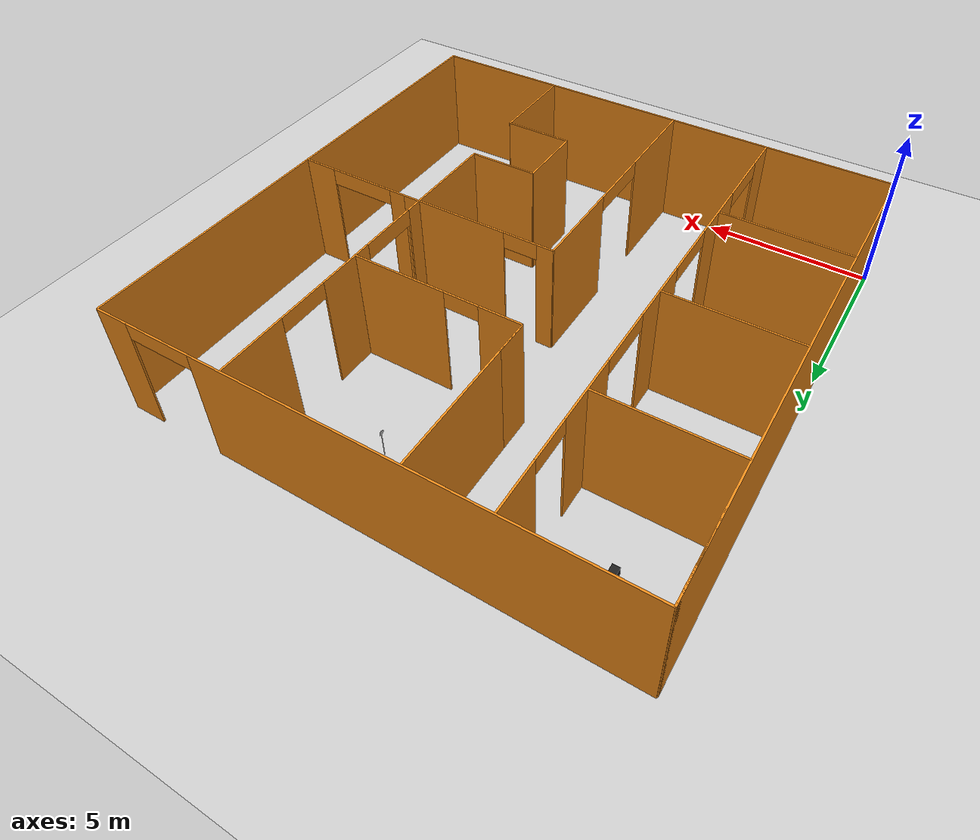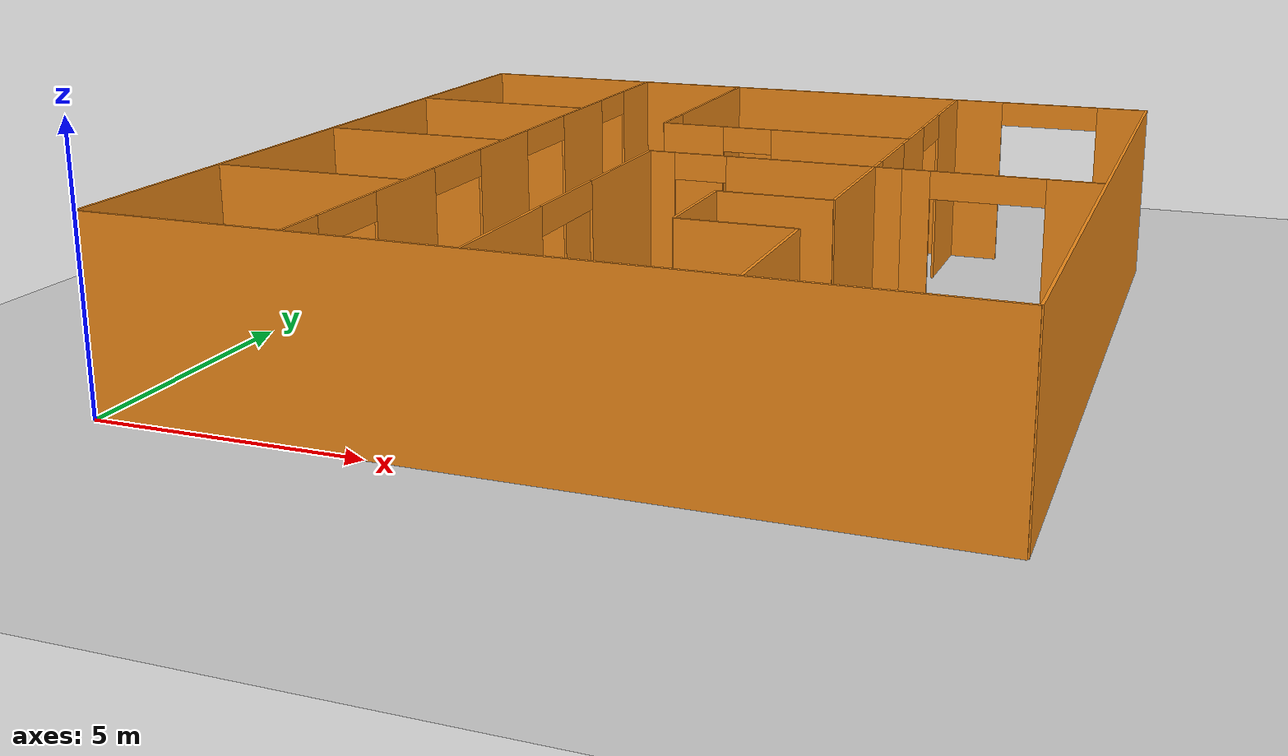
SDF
<sdf version="1.6">
  <world name="default">
    <model name="box_47">
  <pose frame="">11.0 8.875 3.25 0 0 -1.5707963267948966</pose>
  <link name="link">
    <inertial>
      <mass>1</mass>
      <inertia>
        <ixx>0</ixx>
        <ixy>0</ixy>
        <ixz>0</ixz>
        <iyy>0</iyy>
        <iyz>0</iyz>
        <izz>0</izz>
      </inertia>
    </inertial>
    <collision name="collision">
      <geometry>
        <box>
          <size>1.75 0.05 0.5</size>
        </box>
      </geometry>
      <max_contacts>10</max_contacts>
      <surface>
        <contact>
          <ode/>
        </contact>
        <bounce/>
        <friction>
          <torsional>
            <ode/>
          </torsional>
          <ode/>
        </friction>
      </surface>
    </collision>
    <visual name="visual">
      <geometry>
        <box>
          <size>1.75 0.05 0.5</size>
        </box>
      </geometry>
      <material>
        <script>
          <name>Gazebo/Orange</name>
          <uri>file://media/materials/scripts/gazebo.material</uri>
        </script>
      </material>
    </visual>
    <self_collide>0</self_collide>
    <enable_wind>0</enable_wind>
    <kinematic>0</kinematic>
  </link>
	<static>1</static>
</model><model name="box_46">
  <pose frame="">11.0 12.25 3.25 0 0 1.5707963267948966</pose>
  <link name="link">
    <inertial>
      <mass>1</mass>
      <inertia>
        <ixx>0</ixx>
        <ixy>0</ixy>
        <ixz>0</ixz>
        <iyy>0</iyy>
        <iyz>0</iyz>
        <izz>0</izz>
      </inertia>
    </inertial>
    <collision name="collision">
      <geometry>
        <box>
          <size>1.5 0.05 0.5</size>
        </box>
      </geometry>
      <max_contacts>10</max_contacts>
      <surface>
        <contact>
          <ode/>
        </contact>
        <bounce/>
        <friction>
          <torsional>
            <ode/>
          </torsional>
          <ode/>
        </friction>
      </surface>
    </collision>
    <visual name="visual">
      <geometry>
        <box>
          <size>1.5 0.05 0.5</size>
        </box>
      </geometry>
      <material>
        <script>
          <name>Gazebo/Orange</name>
          <uri>file://media/materials/scripts/gazebo.material</uri>
        </script>
      </material>
    </visual>
    <self_collide>0</self_collide>
    <enable_wind>0</enable_wind>
    <kinematic>0</kinematic>
  </link>
	<static>1</static>
</model><model name="box_45">
  <pose frame="">7.75 10.25 3.25 0 0 -0.0</pose>
  <link name="link">
    <inertial>
      <mass>1</mass>
      <inertia>
        <ixx>0</ixx>
        <ixy>0</ixy>
        <ixz>0</ixz>
        <iyy>0</iyy>
        <iyz>0</iyz>
        <izz>0</izz>
      </inertia>
    </inertial>
    <collision name="collision">
      <geometry>
        <box>
          <size>1.0 0.05 0.5</size>
        </box>
      </geometry>
      <max_contacts>10</max_contacts>
      <surface>
        <contact>
          <ode/>
        </contact>
        <bounce/>
        <friction>
          <torsional>
            <ode/>
          </torsional>
          <ode/>
        </friction>
      </surface>
    </collision>
    <visual name="visual">
      <geometry>
        <box>
          <size>1.0 0.05 0.5</size>
        </box>
      </geometry>
      <material>
        <script>
          <name>Gazebo/Orange</name>
          <uri>file://media/materials/scripts/gazebo.material</uri>
        </script>
      </material>
    </visual>
    <self_collide>0</self_collide>
    <enable_wind>0</enable_wind>
    <kinematic>0</kinematic>
  </link>
	<static>1</static>
</model><model name="box_44">
  <pose frame="">13.0 15.0 3.25 0 0 -0.0</pose>
  <link name="link">
    <inertial>
      <mass>1</mass>
      <inertia>
        <ixx>0</ixx>
        <ixy>0</ixy>
        <ixz>0</ixz>
        <iyy>0</iyy>
        <iyz>0</iyz>
        <izz>0</izz>
      </inertia>
    </inertial>
    <collision name="collision">
      <geometry>
        <box>
          <size>2.0 0.05 0.5</size>
        </box>
      </geometry>
      <max_contacts>10</max_contacts>
      <surface>
        <contact>
          <ode/>
        </contact>
        <bounce/>
        <friction>
          <torsional>
            <ode/>
          </torsional>
          <ode/>
        </friction>
      </surface>
    </collision>
    <visual name="visual">
      <geometry>
        <box>
          <size>2.0 0.05 0.5</size>
        </box>
      </geometry>
      <material>
        <script>
          <name>Gazebo/Orange</name>
          <uri>file://media/materials/scripts/gazebo.material</uri>
        </script>
      </material>
    </visual>
    <self_collide>0</self_collide>
    <enable_wind>0</enable_wind>
    <kinematic>0</kinematic>
  </link>
	<static>1</static>
</model><model name="box_43">
  <pose frame="">13.0 7.5 3.25 0 0 -3.141592653589793</pose>
  <link name="link">
    <inertial>
      <mass>1</mass>
      <inertia>
        <ixx>0</ixx>
        <ixy>0</ixy>
        <ixz>0</ixz>
        <iyy>0</iyy>
        <iyz>0</iyz>
        <izz>0</izz>
      </inertia>
    </inertial>
    <collision name="collision">
      <geometry>
        <box>
          <size>2.0 0.05 0.5</size>
        </box>
      </geometry>
      <max_contacts>10</max_contacts>
      <surface>
        <contact>
          <ode/>
        </contact>
        <bounce/>
        <friction>
          <torsional>
            <ode/>
          </torsional>
          <ode/>
        </friction>
      </surface>
    </collision>
    <visual name="visual">
      <geometry>
        <box>
          <size>2.0 0.05 0.5</size>
        </box>
      </geometry>
      <material>
        <script>
          <name>Gazebo/Orange</name>
          <uri>file://media/materials/scripts/gazebo.material</uri>
        </script>
      </material>
    </visual>
    <self_collide>0</self_collide>
    <enable_wind>0</enable_wind>
    <kinematic>0</kinematic>
  </link>
	<static>1</static>
</model><model name="box_42">
  <pose frame="">6.75 3.75 3.25 0 0 1.5707963267948966</pose>
  <link name="link">
    <inertial>
      <mass>1</mass>
      <inertia>
        <ixx>0</ixx>
        <ixy>0</ixy>
        <ixz>0</ixz>
        <iyy>0</iyy>
        <iyz>0</iyz>
        <izz>0</izz>
      </inertia>
    </inertial>
    <collision name="collision">
      <geometry>
        <box>
          <size>2.0 0.05 0.5</size>
        </box>
      </geometry>
      <max_contacts>10</max_contacts>
      <surface>
        <contact>
          <ode/>
        </contact>
        <bounce/>
        <friction>
          <torsional>
            <ode/>
          </torsional>
          <ode/>
        </friction>
      </surface>
    </collision>
    <visual name="visual">
      <geometry>
        <box>
          <size>2.0 0.05 0.5</size>
        </box>
      </geometry>
      <material>
        <script>
          <name>Gazebo/Orange</name>
          <uri>file://media/materials/scripts/gazebo.material</uri>
        </script>
      </material>
    </visual>
    <self_collide>0</self_collide>
    <enable_wind>0</enable_wind>
    <kinematic>0</kinematic>
  </link>
	<static>1</static>
</model><model name="box_41">
  <pose frame="">7.75 7.5 3.25 0 0 -3.141592653589793</pose>
  <link name="link">
    <inertial>
      <mass>1</mass>
      <inertia>
        <ixx>0</ixx>
        <ixy>0</ixy>
        <ixz>0</ixz>
        <iyy>0</iyy>
        <iyz>0</iyz>
        <izz>0</izz>
      </inertia>
    </inertial>
    <collision name="collision">
      <geometry>
        <box>
          <size>1.0 0.05 0.5</size>
        </box>
      </geometry>
      <max_contacts>10</max_contacts>
      <surface>
        <contact>
          <ode/>
        </contact>
        <bounce/>
        <friction>
          <torsional>
            <ode/>
          </torsional>
          <ode/>
        </friction>
      </surface>
    </collision>
    <visual name="visual">
      <geometry>
        <box>
          <size>1.0 0.05 0.5</size>
        </box>
      </geometry>
      <material>
        <script>
          <name>Gazebo/Orange</name>
          <uri>file://media/materials/scripts/gazebo.material</uri>
        </script>
      </material>
    </visual>
    <self_collide>0</self_collide>
    <enable_wind>0</enable_wind>
    <kinematic>0</kinematic>
  </link>
	<static>1</static>
</model><model name="box_40">
  <pose frame="">3.75 12.875 3.25 0 0 -1.5707963267948966</pose>
  <link name="link">
    <inertial>
      <mass>1</mass>
      <inertia>
        <ixx>0</ixx>
        <ixy>0</ixy>
        <ixz>0</ixz>
        <iyy>0</iyy>
        <iyz>0</iyz>
        <izz>0</izz>
      </inertia>
    </inertial>
    <collision name="collision">
      <geometry>
        <box>
          <size>1.25 0.05 0.5</size>
        </box>
      </geometry>
      <max_contacts>10</max_contacts>
      <surface>
        <contact>
          <ode/>
        </contact>
        <bounce/>
        <friction>
          <torsional>
            <ode/>
          </torsional>
          <ode/>
        </friction>
      </surface>
    </collision>
    <visual name="visual">
      <geometry>
        <box>
          <size>1.25 0.05 0.5</size>
        </box>
      </geometry>
      <material>
        <script>
          <name>Gazebo/Orange</name>
          <uri>file://media/materials/scripts/gazebo.material</uri>
        </script>
      </material>
    </visual>
    <self_collide>0</self_collide>
    <enable_wind>0</enable_wind>
    <kinematic>0</kinematic>
  </link>
	<static>1</static>
</model><model name="box_39">
  <pose frame="">3.75 9.375 3.25 0 0 -1.5707963267948966</pose>
  <link name="link">
    <inertial>
      <mass>1</mass>
      <inertia>
        <ixx>0</ixx>
        <ixy>0</ixy>
        <ixz>0</ixz>
        <iyy>0</iyy>
        <iyz>0</iyz>
        <izz>0</izz>
      </inertia>
    </inertial>
    <collision name="collision">
      <geometry>
        <box>
          <size>1.75 0.05 0.5</size>
        </box>
      </geometry>
      <max_contacts>10</max_contacts>
      <surface>
        <contact>
          <ode/>
        </contact>
        <bounce/>
        <friction>
          <torsional>
            <ode/>
          </torsional>
          <ode/>
        </friction>
      </surface>
    </collision>
    <visual name="visual">
      <geometry>
        <box>
          <size>1.75 0.05 0.5</size>
        </box>
      </geometry>
      <material>
        <script>
          <name>Gazebo/Orange</name>
          <uri>file://media/materials/scripts/gazebo.material</uri>
        </script>
      </material>
    </visual>
    <self_collide>0</self_collide>
    <enable_wind>0</enable_wind>
    <kinematic>0</kinematic>
  </link>
	<static>1</static>
</model><model name="box_38">
  <pose frame="">3.75 1.875 3.25 0 0 1.5707963267948966</pose>
  <link name="link">
    <inertial>
      <mass>1</mass>
      <inertia>
        <ixx>0</ixx>
        <ixy>0</ixy>
        <ixz>0</ixz>
        <iyy>0</iyy>
        <iyz>0</iyz>
        <izz>0</izz>
      </inertia>
    </inertial>
    <collision name="collision">
      <geometry>
        <box>
          <size>1.75 0.05 0.5</size>
        </box>
      </geometry>
      <max_contacts>10</max_contacts>
      <surface>
        <contact>
          <ode/>
        </contact>
        <bounce/>
        <friction>
          <torsional>
            <ode/>
          </torsional>
          <ode/>
        </friction>
      </surface>
    </collision>
    <visual name="visual">
      <geometry>
        <box>
          <size>1.75 0.05 0.5</size>
        </box>
      </geometry>
      <material>
        <script>
          <name>Gazebo/Orange</name>
          <uri>file://media/materials/scripts/gazebo.material</uri>
        </script>
      </material>
    </visual>
    <self_collide>0</self_collide>
    <enable_wind>0</enable_wind>
    <kinematic>0</kinematic>
  </link>
	<static>1</static>
</model><model name="box_37">
  <pose frame="">3.75 5.625 3.25 0 0 1.5707963267948966</pose>
  <link name="link">
    <inertial>
      <mass>1</mass>
      <inertia>
        <ixx>0</ixx>
        <ixy>0</ixy>
        <ixz>0</ixz>
        <iyy>0</iyy>
        <iyz>0</iyz>
        <izz>0</izz>
      </inertia>
    </inertial>
    <collision name="collision">
      <geometry>
        <box>
          <size>1.75 0.05 0.5</size>
        </box>
      </geometry>
      <max_contacts>10</max_contacts>
      <surface>
        <contact>
          <ode/>
        </contact>
        <bounce/>
        <friction>
          <torsional>
            <ode/>
          </torsional>
          <ode/>
        </friction>
      </surface>
    </collision>
    <visual name="visual">
      <geometry>
        <box>
          <size>1.75 0.05 0.5</size>
        </box>
      </geometry>
      <material>
        <script>
          <name>Gazebo/Orange</name>
          <uri>file://media/materials/scripts/gazebo.material</uri>
        </script>
      </material>
    </visual>
    <self_collide>0</self_collide>
    <enable_wind>0</enable_wind>
    <kinematic>0</kinematic>
  </link>
	<static>1</static>
</model><model name="box_36">
  <pose frame="">1.875 5.375 0.25 0 0 0</pose>
  <link name="link">
    <inertial>
      <mass>1</mass>
      <inertia>
        <ixx>0</ixx>
        <ixy>0</ixy>
        <ixz>0</ixz>
        <iyy>0</iyy>
        <iyz>0</iyz>
        <izz>0</izz>
      </inertia>
    </inertial>
    <collision name="collision">
      <geometry>
        <box>
          <size>0.25 0.25 0.5</size>
        </box>
      </geometry>
      <max_contacts>10</max_contacts>
      <surface>
        <contact>
          <ode/>
        </contact>
        <bounce/>
        <friction>
          <torsional>
            <ode/>
          </torsional>
          <ode/>
        </friction>
      </surface>
    </collision>
    <visual name="visual">
      <geometry>
        <box>
          <size>0.25 0.25 0.5</size>
        </box>
      </geometry>
      <material>
        <script>
          <name>Gazebo/Orange</name>
          <uri>file://media/materials/scripts/gazebo.material</uri>
        </script>
      </material>
    </visual>
    <self_collide>0</self_collide>
    <enable_wind>0</enable_wind>
    <kinematic>0</kinematic>
  </link>
	<static>1</static>
</model><model name="box_35">
  <pose frame="">8.125 4.375 0.25 0 0 0</pose>
  <link name="link">
    <inertial>
      <mass>1</mass>
      <inertia>
        <ixx>0</ixx>
        <ixy>0</ixy>
        <ixz>0</ixz>
        <iyy>0</iyy>
        <iyz>0</iyz>
        <izz>0</izz>
      </inertia>
    </inertial>
    <collision name="collision">
      <geometry>
        <box>
          <size>0.25 0.25 0.5</size>
        </box>
      </geometry>
      <max_contacts>10</max_contacts>
      <surface>
        <contact>
          <ode/>
        </contact>
        <bounce/>
        <friction>
          <torsional>
            <ode/>
          </torsional>
          <ode/>
        </friction>
      </surface>
    </collision>
    <visual name="visual">
      <geometry>
        <box>
          <size>0.25 0.25 0.5</size>
        </box>
      </geometry>
      <material>
        <script>
          <name>Gazebo/Orange</name>
          <uri>file://media/materials/scripts/gazebo.material</uri>
        </script>
      </material>
    </visual>
    <self_collide>0</self_collide>
    <enable_wind>0</enable_wind>
    <kinematic>0</kinematic>
  </link>
	<static>1</static>
</model><include><uri>model://left-sign</uri><name>sign_4</name><pose>1.8125 1.5625 0 0 0 1.5707963267948966</pose></include><include><uri>model://forward-right-sign</uri><name>sign_3</name><pose>13.1875 3.6875 0 0 0 4.71238898038469</pose></include><include><uri>model://right-sign</uri><name>sign_2</name><pose>13.3125 13.0625 0 0 0 1.5707963267948966</pose></include><include><uri>model://forward-sign</uri><name>sign_1</name><pose>8.4375 12.9375 0 0 0 4.71238898038469</pose></include><include><uri>model://brick-sign</uri><name>sign_0</name><pose>1.9375 9.4375 0 0 0 4.71238898038469</pose></include><model name="box_34">
  <pose frame="">11.0 7.75 1.75 0 0 -1.5707963267948966</pose>
  <link name="link">
    <inertial>
      <mass>1</mass>
      <inertia>
        <ixx>0</ixx>
        <ixy>0</ixy>
        <ixz>0</ixz>
        <iyy>0</iyy>
        <iyz>0</iyz>
        <izz>0</izz>
      </inertia>
    </inertial>
    <collision name="collision">
      <geometry>
        <box>
          <size>0.5 0.05 3.5</size>
        </box>
      </geometry>
      <max_contacts>10</max_contacts>
      <surface>
        <contact>
          <ode/>
        </contact>
        <bounce/>
        <friction>
          <torsional>
            <ode/>
          </torsional>
          <ode/>
        </friction>
      </surface>
    </collision>
    <visual name="visual">
      <geometry>
        <box>
          <size>0.5 0.05 3.5</size>
        </box>
      </geometry>
      <material>
        <script>
          <name>Gazebo/Orange</name>
          <uri>file://media/materials/scripts/gazebo.material</uri>
        </script>
      </material>
    </visual>
    <self_collide>0</self_collide>
    <enable_wind>0</enable_wind>
    <kinematic>0</kinematic>
  </link>
	<static>1</static>
</model><model name="box_33">
  <pose frame="">11.0 10.625 1.75 0 0 1.5707963267948966</pose>
  <link name="link">
    <inertial>
      <mass>1</mass>
      <inertia>
        <ixx>0</ixx>
        <ixy>0</ixy>
        <ixz>0</ixz>
        <iyy>0</iyy>
        <iyz>0</iyz>
        <izz>0</izz>
      </inertia>
    </inertial>
    <collision name="collision">
      <geometry>
        <box>
          <size>1.75 0.05 3.5</size>
        </box>
      </geometry>
      <max_contacts>10</max_contacts>
      <surface>
        <contact>
          <ode/>
        </contact>
        <bounce/>
        <friction>
          <torsional>
            <ode/>
          </torsional>
          <ode/>
        </friction>
      </surface>
    </collision>
    <visual name="visual">
      <geometry>
        <box>
          <size>1.75 0.05 3.5</size>
        </box>
      </geometry>
      <material>
        <script>
          <name>Gazebo/Orange</name>
          <uri>file://media/materials/scripts/gazebo.material</uri>
        </script>
      </material>
    </visual>
    <self_collide>0</self_collide>
    <enable_wind>0</enable_wind>
    <kinematic>0</kinematic>
  </link>
	<static>1</static>
</model><model name="box_32">
  <pose frame="">11.0 14.0 1.75 0 0 1.5707963267948966</pose>
  <link name="link">
    <inertial>
      <mass>1</mass>
      <inertia>
        <ixx>0</ixx>
        <ixy>0</ixy>
        <ixz>0</ixz>
        <iyy>0</iyy>
        <iyz>0</iyz>
        <izz>0</izz>
      </inertia>
    </inertial>
    <collision name="collision">
      <geometry>
        <box>
          <size>2.0 0.05 3.5</size>
        </box>
      </geometry>
      <max_contacts>10</max_contacts>
      <surface>
        <contact>
          <ode/>
        </contact>
        <bounce/>
        <friction>
          <torsional>
            <ode/>
          </torsional>
          <ode/>
        </friction>
      </surface>
    </collision>
    <visual name="visual">
      <geometry>
        <box>
          <size>2.0 0.05 3.5</size>
        </box>
      </geometry>
      <material>
        <script>
          <name>Gazebo/Orange</name>
          <uri>file://media/materials/scripts/gazebo.material</uri>
        </script>
      </material>
    </visual>
    <self_collide>0</self_collide>
    <enable_wind>0</enable_wind>
    <kinematic>0</kinematic>
  </link>
	<static>1</static>
</model><model name="box_31">
  <pose frame="">6.625 10.25 1.75 0 0 -0.0</pose>
  <link name="link">
    <inertial>
      <mass>1</mass>
      <inertia>
        <ixx>0</ixx>
        <ixy>0</ixy>
        <ixz>0</ixz>
        <iyy>0</iyy>
        <iyz>0</iyz>
        <izz>0</izz>
      </inertia>
    </inertial>
    <collision name="collision">
      <geometry>
        <box>
          <size>1.25 0.05 3.5</size>
        </box>
      </geometry>
      <max_contacts>10</max_contacts>
      <surface>
        <contact>
          <ode/>
        </contact>
        <bounce/>
        <friction>
          <torsional>
            <ode/>
          </torsional>
          <ode/>
        </friction>
      </surface>
    </collision>
    <visual name="visual">
      <geometry>
        <box>
          <size>1.25 0.05 3.5</size>
        </box>
      </geometry>
      <material>
        <script>
          <name>Gazebo/Orange</name>
          <uri>file://media/materials/scripts/gazebo.material</uri>
        </script>
      </material>
    </visual>
    <self_collide>0</self_collide>
    <enable_wind>0</enable_wind>
    <kinematic>0</kinematic>
  </link>
	<static>1</static>
</model><model name="box_30">
  <pose frame="">9.625 10.25 1.75 0 0 -3.141592653589793</pose>
  <link name="link">
    <inertial>
      <mass>1</mass>
      <inertia>
        <ixx>0</ixx>
        <ixy>0</ixy>
        <ixz>0</ixz>
        <iyy>0</iyy>
        <iyz>0</iyz>
        <izz>0</izz>
      </inertia>
    </inertial>
    <collision name="collision">
      <geometry>
        <box>
          <size>2.75 0.05 3.5</size>
        </box>
      </geometry>
      <max_contacts>10</max_contacts>
      <surface>
        <contact>
          <ode/>
        </contact>
        <bounce/>
        <friction>
          <torsional>
            <ode/>
          </torsional>
          <ode/>
        </friction>
      </surface>
    </collision>
    <visual name="visual">
      <geometry>
        <box>
          <size>2.75 0.05 3.5</size>
        </box>
      </geometry>
      <material>
        <script>
          <name>Gazebo/Orange</name>
          <uri>file://media/materials/scripts/gazebo.material</uri>
        </script>
      </material>
    </visual>
    <self_collide>0</self_collide>
    <enable_wind>0</enable_wind>
    <kinematic>0</kinematic>
  </link>
	<static>1</static>
</model><model name="box_29">
  <pose frame="">14.5 7.5 1.75 0 0 -0.0</pose>
  <link name="link">
    <inertial>
      <mass>1</mass>
      <inertia>
        <ixx>0</ixx>
        <ixy>0</ixy>
        <ixz>0</ixz>
        <iyy>0</iyy>
        <iyz>0</iyz>
        <izz>0</izz>
      </inertia>
    </inertial>
    <collision name="collision">
      <geometry>
        <box>
          <size>1.0 0.05 3.5</size>
        </box>
      </geometry>
      <max_contacts>10</max_contacts>
      <surface>
        <contact>
          <ode/>
        </contact>
        <bounce/>
        <friction>
          <torsional>
            <ode/>
          </torsional>
          <ode/>
        </friction>
      </surface>
    </collision>
    <visual name="visual">
      <geometry>
        <box>
          <size>1.0 0.05 3.5</size>
        </box>
      </geometry>
      <material>
        <script>
          <name>Gazebo/Orange</name>
          <uri>file://media/materials/scripts/gazebo.material</uri>
        </script>
      </material>
    </visual>
    <self_collide>0</self_collide>
    <enable_wind>0</enable_wind>
    <kinematic>0</kinematic>
  </link>
	<static>1</static>
</model><model name="box_28">
  <pose frame="">11.75 7.5 1.75 0 0 -3.141592653589793</pose>
  <link name="link">
    <inertial>
      <mass>1</mass>
      <inertia>
        <ixx>0</ixx>
        <ixy>0</ixy>
        <ixz>0</ixz>
        <iyy>0</iyy>
        <iyz>0</iyz>
        <izz>0</izz>
      </inertia>
    </inertial>
    <collision name="collision">
      <geometry>
        <box>
          <size>0.5 0.05 3.5</size>
        </box>
      </geometry>
      <max_contacts>10</max_contacts>
      <surface>
        <contact>
          <ode/>
        </contact>
        <bounce/>
        <friction>
          <torsional>
            <ode/>
          </torsional>
          <ode/>
        </friction>
      </surface>
    </collision>
    <visual name="visual">
      <geometry>
        <box>
          <size>0.5 0.05 3.5</size>
        </box>
      </geometry>
      <material>
        <script>
          <name>Gazebo/Orange</name>
          <uri>file://media/materials/scripts/gazebo.material</uri>
        </script>
      </material>
    </visual>
    <self_collide>0</self_collide>
    <enable_wind>0</enable_wind>
    <kinematic>0</kinematic>
  </link>
	<static>1</static>
</model><model name="box_27">
  <pose frame="">11.25 7.5 1.75 0 0 -3.141592653589793</pose>
  <link name="link">
    <inertial>
      <mass>1</mass>
      <inertia>
        <ixx>0</ixx>
        <ixy>0</ixy>
        <ixz>0</ixz>
        <iyy>0</iyy>
        <iyz>0</iyz>
        <izz>0</izz>
      </inertia>
    </inertial>
    <collision name="collision">
      <geometry>
        <box>
          <size>0.5 0.05 3.5</size>
        </box>
      </geometry>
      <max_contacts>10</max_contacts>
      <surface>
        <contact>
          <ode/>
        </contact>
        <bounce/>
        <friction>
          <torsional>
            <ode/>
          </torsional>
          <ode/>
        </friction>
      </surface>
    </collision>
    <visual name="visual">
      <geometry>
        <box>
          <size>0.5 0.05 3.5</size>
        </box>
      </geometry>
      <material>
        <script>
          <name>Gazebo/Orange</name>
          <uri>file://media/materials/scripts/gazebo.material</uri>
        </script>
      </material>
    </visual>
    <self_collide>0</self_collide>
    <enable_wind>0</enable_wind>
    <kinematic>0</kinematic>
  </link>
	<static>1</static>
</model><model name="box_26">
  <pose frame="">9.625 7.5 1.75 0 0 -3.141592653589793</pose>
  <link name="link">
    <inertial>
      <mass>1</mass>
      <inertia>
        <ixx>0</ixx>
        <ixy>0</ixy>
        <ixz>0</ixz>
        <iyy>0</iyy>
        <iyz>0</iyz>
        <izz>0</izz>
      </inertia>
    </inertial>
    <collision name="collision">
      <geometry>
        <box>
          <size>2.75 0.05 3.5</size>
        </box>
      </geometry>
      <max_contacts>10</max_contacts>
      <surface>
        <contact>
          <ode/>
        </contact>
        <bounce/>
        <friction>
          <torsional>
            <ode/>
          </torsional>
          <ode/>
        </friction>
      </surface>
    </collision>
    <visual name="visual">
      <geometry>
        <box>
          <size>2.75 0.05 3.5</size>
        </box>
      </geometry>
      <material>
        <script>
          <name>Gazebo/Orange</name>
          <uri>file://media/materials/scripts/gazebo.material</uri>
        </script>
      </material>
    </visual>
    <self_collide>0</self_collide>
    <enable_wind>0</enable_wind>
    <kinematic>0</kinematic>
  </link>
	<static>1</static>
</model><model name="box_25">
  <pose frame="">7.0 7.5 1.75 0 0 -0.0</pose>
  <link name="link">
    <inertial>
      <mass>1</mass>
      <inertia>
        <ixx>0</ixx>
        <ixy>0</ixy>
        <ixz>0</ixz>
        <iyy>0</iyy>
        <iyz>0</iyz>
        <izz>0</izz>
      </inertia>
    </inertial>
    <collision name="collision">
      <geometry>
        <box>
          <size>0.5 0.05 3.5</size>
        </box>
      </geometry>
      <max_contacts>10</max_contacts>
      <surface>
        <contact>
          <ode/>
        </contact>
        <bounce/>
        <friction>
          <torsional>
            <ode/>
          </torsional>
          <ode/>
        </friction>
      </surface>
    </collision>
    <visual name="visual">
      <geometry>
        <box>
          <size>0.5 0.05 3.5</size>
        </box>
      </geometry>
      <material>
        <script>
          <name>Gazebo/Orange</name>
          <uri>file://media/materials/scripts/gazebo.material</uri>
        </script>
      </material>
    </visual>
    <self_collide>0</self_collide>
    <enable_wind>0</enable_wind>
    <kinematic>0</kinematic>
  </link>
	<static>1</static>
</model><model name="box_24">
  <pose frame="">11.0 6.125 1.75 0 0 -1.5707963267948966</pose>
  <link name="link">
    <inertial>
      <mass>1</mass>
      <inertia>
        <ixx>0</ixx>
        <ixy>0</ixy>
        <ixz>0</ixz>
        <iyy>0</iyy>
        <iyz>0</iyz>
        <izz>0</izz>
      </inertia>
    </inertial>
    <collision name="collision">
      <geometry>
        <box>
          <size>2.75 0.05 3.5</size>
        </box>
      </geometry>
      <max_contacts>10</max_contacts>
      <surface>
        <contact>
          <ode/>
        </contact>
        <bounce/>
        <friction>
          <torsional>
            <ode/>
          </torsional>
          <ode/>
        </friction>
      </surface>
    </collision>
    <visual name="visual">
      <geometry>
        <box>
          <size>2.75 0.05 3.5</size>
        </box>
      </geometry>
      <material>
        <script>
          <name>Gazebo/Orange</name>
          <uri>file://media/materials/scripts/gazebo.material</uri>
        </script>
      </material>
    </visual>
    <self_collide>0</self_collide>
    <enable_wind>0</enable_wind>
    <kinematic>0</kinematic>
  </link>
	<static>1</static>
</model><model name="box_23">
  <pose frame="">10.0 4.75 1.75 0 0 -3.141592653589793</pose>
  <link name="link">
    <inertial>
      <mass>1</mass>
      <inertia>
        <ixx>0</ixx>
        <ixy>0</ixy>
        <ixz>0</ixz>
        <iyy>0</iyy>
        <iyz>0</iyz>
        <izz>0</izz>
      </inertia>
    </inertial>
    <collision name="collision">
      <geometry>
        <box>
          <size>2.0 0.05 3.5</size>
        </box>
      </geometry>
      <max_contacts>10</max_contacts>
      <surface>
        <contact>
          <ode/>
        </contact>
        <bounce/>
        <friction>
          <torsional>
            <ode/>
          </torsional>
          <ode/>
        </friction>
      </surface>
    </collision>
    <visual name="visual">
      <geometry>
        <box>
          <size>2.0 0.05 3.5</size>
        </box>
      </geometry>
      <material>
        <script>
          <name>Gazebo/Orange</name>
          <uri>file://media/materials/scripts/gazebo.material</uri>
        </script>
      </material>
    </visual>
    <self_collide>0</self_collide>
    <enable_wind>0</enable_wind>
    <kinematic>0</kinematic>
  </link>
	<static>1</static>
</model><model name="box_22">
  <pose frame="">9.0 3.75 1.75 0 0 -1.5707963267948966</pose>
  <link name="link">
    <inertial>
      <mass>1</mass>
      <inertia>
        <ixx>0</ixx>
        <ixy>0</ixy>
        <ixz>0</ixz>
        <iyy>0</iyy>
        <iyz>0</iyz>
        <izz>0</izz>
      </inertia>
    </inertial>
    <collision name="collision">
      <geometry>
        <box>
          <size>2.0 0.05 3.5</size>
        </box>
      </geometry>
      <max_contacts>10</max_contacts>
      <surface>
        <contact>
          <ode/>
        </contact>
        <bounce/>
        <friction>
          <torsional>
            <ode/>
          </torsional>
          <ode/>
        </friction>
      </surface>
    </collision>
    <visual name="visual">
      <geometry>
        <box>
          <size>2.0 0.05 3.5</size>
        </box>
      </geometry>
      <material>
        <script>
          <name>Gazebo/Orange</name>
          <uri>file://media/materials/scripts/gazebo.material</uri>
        </script>
      </material>
    </visual>
    <self_collide>0</self_collide>
    <enable_wind>0</enable_wind>
    <kinematic>0</kinematic>
  </link>
	<static>1</static>
</model><model name="box_21">
  <pose frame="">10.0 2.75 1.75 0 0 -0.0</pose>
  <link name="link">
    <inertial>
      <mass>1</mass>
      <inertia>
        <ixx>0</ixx>
        <ixy>0</ixy>
        <ixz>0</ixz>
        <iyy>0</iyy>
        <iyz>0</iyz>
        <izz>0</izz>
      </inertia>
    </inertial>
    <collision name="collision">
      <geometry>
        <box>
          <size>2.0 0.05 3.5</size>
        </box>
      </geometry>
      <max_contacts>10</max_contacts>
      <surface>
        <contact>
          <ode/>
        </contact>
        <bounce/>
        <friction>
          <torsional>
            <ode/>
          </torsional>
          <ode/>
        </friction>
      </surface>
    </collision>
    <visual name="visual">
      <geometry>
        <box>
          <size>2.0 0.05 3.5</size>
        </box>
      </geometry>
      <material>
        <script>
          <name>Gazebo/Orange</name>
          <uri>file://media/materials/scripts/gazebo.material</uri>
        </script>
      </material>
    </visual>
    <self_collide>0</self_collide>
    <enable_wind>0</enable_wind>
    <kinematic>0</kinematic>
  </link>
	<static>1</static>
</model><model name="box_20">
  <pose frame="">11.0 1.375 1.75 0 0 1.5707963267948966</pose>
  <link name="link">
    <inertial>
      <mass>1</mass>
      <inertia>
        <ixx>0</ixx>
        <ixy>0</ixy>
        <ixz>0</ixz>
        <iyy>0</iyy>
        <iyz>0</iyz>
        <izz>0</izz>
      </inertia>
    </inertial>
    <collision name="collision">
      <geometry>
        <box>
          <size>2.75 0.05 3.5</size>
        </box>
      </geometry>
      <max_contacts>10</max_contacts>
      <surface>
        <contact>
          <ode/>
        </contact>
        <bounce/>
        <friction>
          <torsional>
            <ode/>
          </torsional>
          <ode/>
        </friction>
      </surface>
    </collision>
    <visual name="visual">
      <geometry>
        <box>
          <size>2.75 0.05 3.5</size>
        </box>
      </geometry>
      <material>
        <script>
          <name>Gazebo/Orange</name>
          <uri>file://media/materials/scripts/gazebo.material</uri>
        </script>
      </material>
    </visual>
    <self_collide>0</self_collide>
    <enable_wind>0</enable_wind>
    <kinematic>0</kinematic>
  </link>
	<static>1</static>
</model><model name="box_19">
  <pose frame="">6.75 1.375 1.75 0 0 1.5707963267948966</pose>
  <link name="link">
    <inertial>
      <mass>1</mass>
      <inertia>
        <ixx>0</ixx>
        <ixy>0</ixy>
        <ixz>0</ixz>
        <iyy>0</iyy>
        <iyz>0</iyz>
        <izz>0</izz>
      </inertia>
    </inertial>
    <collision name="collision">
      <geometry>
        <box>
          <size>2.75 0.05 3.5</size>
        </box>
      </geometry>
      <max_contacts>10</max_contacts>
      <surface>
        <contact>
          <ode/>
        </contact>
        <bounce/>
        <friction>
          <torsional>
            <ode/>
          </torsional>
          <ode/>
        </friction>
      </surface>
    </collision>
    <visual name="visual">
      <geometry>
        <box>
          <size>2.75 0.05 3.5</size>
        </box>
      </geometry>
      <material>
        <script>
          <name>Gazebo/Orange</name>
          <uri>file://media/materials/scripts/gazebo.material</uri>
        </script>
      </material>
    </visual>
    <self_collide>0</self_collide>
    <enable_wind>0</enable_wind>
    <kinematic>0</kinematic>
  </link>
	<static>1</static>
</model><model name="box_18">
  <pose frame="">6.75 6.125 1.75 0 0 -1.5707963267948966</pose>
  <link name="link">
    <inertial>
      <mass>1</mass>
      <inertia>
        <ixx>0</ixx>
        <ixy>0</ixy>
        <ixz>0</ixz>
        <iyy>0</iyy>
        <iyz>0</iyz>
        <izz>0</izz>
      </inertia>
    </inertial>
    <collision name="collision">
      <geometry>
        <box>
          <size>2.75 0.05 3.5</size>
        </box>
      </geometry>
      <max_contacts>10</max_contacts>
      <surface>
        <contact>
          <ode/>
        </contact>
        <bounce/>
        <friction>
          <torsional>
            <ode/>
          </torsional>
          <ode/>
        </friction>
      </surface>
    </collision>
    <visual name="visual">
      <geometry>
        <box>
          <size>2.75 0.05 3.5</size>
        </box>
      </geometry>
      <material>
        <script>
          <name>Gazebo/Orange</name>
          <uri>file://media/materials/scripts/gazebo.material</uri>
        </script>
      </material>
    </visual>
    <self_collide>0</self_collide>
    <enable_wind>0</enable_wind>
    <kinematic>0</kinematic>
  </link>
	<static>1</static>
</model><model name="box_17">
  <pose frame="">6.0 10.75 1.75 0 0 1.5707963267948966</pose>
  <link name="link">
    <inertial>
      <mass>1</mass>
      <inertia>
        <ixx>0</ixx>
        <ixy>0</ixy>
        <ixz>0</ixz>
        <iyy>0</iyy>
        <iyz>0</iyz>
        <izz>0</izz>
      </inertia>
    </inertial>
    <collision name="collision">
      <geometry>
        <box>
          <size>1.0 0.05 3.5</size>
        </box>
      </geometry>
      <max_contacts>10</max_contacts>
      <surface>
        <contact>
          <ode/>
        </contact>
        <bounce/>
        <friction>
          <torsional>
            <ode/>
          </torsional>
          <ode/>
        </friction>
      </surface>
    </collision>
    <visual name="visual">
      <geometry>
        <box>
          <size>1.0 0.05 3.5</size>
        </box>
      </geometry>
      <material>
        <script>
          <name>Gazebo/Orange</name>
          <uri>file://media/materials/scripts/gazebo.material</uri>
        </script>
      </material>
    </visual>
    <self_collide>0</self_collide>
    <enable_wind>0</enable_wind>
    <kinematic>0</kinematic>
  </link>
	<static>1</static>
</model><model name="box_16">
  <pose frame="">6.0 10.75 1.75 0 0 -1.5707963267948966</pose>
  <link name="link">
    <inertial>
      <mass>1</mass>
      <inertia>
        <ixx>0</ixx>
        <ixy>0</ixy>
        <ixz>0</ixz>
        <iyy>0</iyy>
        <iyz>0</iyz>
        <izz>0</izz>
      </inertia>
    </inertial>
    <collision name="collision">
      <geometry>
        <box>
          <size>1.0 0.05 3.5</size>
        </box>
      </geometry>
      <max_contacts>10</max_contacts>
      <surface>
        <contact>
          <ode/>
        </contact>
        <bounce/>
        <friction>
          <torsional>
            <ode/>
          </torsional>
          <ode/>
        </friction>
      </surface>
    </collision>
    <visual name="visual">
      <geometry>
        <box>
          <size>1.0 0.05 3.5</size>
        </box>
      </geometry>
      <material>
        <script>
          <name>Gazebo/Orange</name>
          <uri>file://media/materials/scripts/gazebo.material</uri>
        </script>
      </material>
    </visual>
    <self_collide>0</self_collide>
    <enable_wind>0</enable_wind>
    <kinematic>0</kinematic>
  </link>
	<static>1</static>
</model><model name="box_15">
  <pose frame="">6.0 13.125 1.75 0 0 1.5707963267948966</pose>
  <link name="link">
    <inertial>
      <mass>1</mass>
      <inertia>
        <ixx>0</ixx>
        <ixy>0</ixy>
        <ixz>0</ixz>
        <iyy>0</iyy>
        <iyz>0</iyz>
        <izz>0</izz>
      </inertia>
    </inertial>
    <collision name="collision">
      <geometry>
        <box>
          <size>3.75 0.05 3.5</size>
        </box>
      </geometry>
      <max_contacts>10</max_contacts>
      <surface>
        <contact>
          <ode/>
        </contact>
        <bounce/>
        <friction>
          <torsional>
            <ode/>
          </torsional>
          <ode/>
        </friction>
      </surface>
    </collision>
    <visual name="visual">
      <geometry>
        <box>
          <size>3.75 0.05 3.5</size>
        </box>
      </geometry>
      <material>
        <script>
          <name>Gazebo/Orange</name>
          <uri>file://media/materials/scripts/gazebo.material</uri>
        </script>
      </material>
    </visual>
    <self_collide>0</self_collide>
    <enable_wind>0</enable_wind>
    <kinematic>0</kinematic>
  </link>
	<static>1</static>
</model><model name="box_14">
  <pose frame="">6.0 15.0 1.75 0 0 -0.0</pose>
  <link name="link">
    <inertial>
      <mass>1</mass>
      <inertia>
        <ixx>0</ixx>
        <ixy>0</ixy>
        <ixz>0</ixz>
        <iyy>0</iyy>
        <iyz>0</iyz>
        <izz>0</izz>
      </inertia>
    </inertial>
    <collision name="collision">
      <geometry>
        <box>
          <size>12.0 0.05 3.5</size>
        </box>
      </geometry>
      <max_contacts>10</max_contacts>
      <surface>
        <contact>
          <ode/>
        </contact>
        <bounce/>
        <friction>
          <torsional>
            <ode/>
          </torsional>
          <ode/>
        </friction>
      </surface>
    </collision>
    <visual name="visual">
      <geometry>
        <box>
          <size>12.0 0.05 3.5</size>
        </box>
      </geometry>
      <material>
        <script>
          <name>Gazebo/Orange</name>
          <uri>file://media/materials/scripts/gazebo.material</uri>
        </script>
      </material>
    </visual>
    <self_collide>0</self_collide>
    <enable_wind>0</enable_wind>
    <kinematic>0</kinematic>
  </link>
	<static>1</static>
</model><model name="box_13">
  <pose frame="">1.875 7.5 1.75 0 0 -0.0</pose>
  <link name="link">
    <inertial>
      <mass>1</mass>
      <inertia>
        <ixx>0</ixx>
        <ixy>0</ixy>
        <ixz>0</ixz>
        <iyy>0</iyy>
        <iyz>0</iyz>
        <izz>0</izz>
      </inertia>
    </inertial>
    <collision name="collision">
      <geometry>
        <box>
          <size>3.75 0.05 3.5</size>
        </box>
      </geometry>
      <max_contacts>10</max_contacts>
      <surface>
        <contact>
          <ode/>
        </contact>
        <bounce/>
        <friction>
          <torsional>
            <ode/>
          </torsional>
          <ode/>
        </friction>
      </surface>
    </collision>
    <visual name="visual">
      <geometry>
        <box>
          <size>3.75 0.05 3.5</size>
        </box>
      </geometry>
      <material>
        <script>
          <name>Gazebo/Orange</name>
          <uri>file://media/materials/scripts/gazebo.material</uri>
        </script>
      </material>
    </visual>
    <self_collide>0</self_collide>
    <enable_wind>0</enable_wind>
    <kinematic>0</kinematic>
  </link>
	<static>1</static>
</model><model name="box_12">
  <pose frame="">1.875 11.25 1.75 0 0 -0.0</pose>
  <link name="link">
    <inertial>
      <mass>1</mass>
      <inertia>
        <ixx>0</ixx>
        <ixy>0</ixy>
        <ixz>0</ixz>
        <iyy>0</iyy>
        <iyz>0</iyz>
        <izz>0</izz>
      </inertia>
    </inertial>
    <collision name="collision">
      <geometry>
        <box>
          <size>3.75 0.05 3.5</size>
        </box>
      </geometry>
      <max_contacts>10</max_contacts>
      <surface>
        <contact>
          <ode/>
        </contact>
        <bounce/>
        <friction>
          <torsional>
            <ode/>
          </torsional>
          <ode/>
        </friction>
      </surface>
    </collision>
    <visual name="visual">
      <geometry>
        <box>
          <size>3.75 0.05 3.5</size>
        </box>
      </geometry>
      <material>
        <script>
          <name>Gazebo/Orange</name>
          <uri>file://media/materials/scripts/gazebo.material</uri>
        </script>
      </material>
    </visual>
    <self_collide>0</self_collide>
    <enable_wind>0</enable_wind>
    <kinematic>0</kinematic>
  </link>
	<static>1</static>
</model><model name="box_11">
  <pose frame="">3.75 11.25 1.75 0 0 -1.5707963267948966</pose>
  <link name="link">
    <inertial>
      <mass>1</mass>
      <inertia>
        <ixx>0</ixx>
        <ixy>0</ixy>
        <ixz>0</ixz>
        <iyy>0</iyy>
        <iyz>0</iyz>
        <izz>0</izz>
      </inertia>
    </inertial>
    <collision name="collision">
      <geometry>
        <box>
          <size>2.0 0.05 3.5</size>
        </box>
      </geometry>
      <max_contacts>10</max_contacts>
      <surface>
        <contact>
          <ode/>
        </contact>
        <bounce/>
        <friction>
          <torsional>
            <ode/>
          </torsional>
          <ode/>
        </friction>
      </surface>
    </collision>
    <visual name="visual">
      <geometry>
        <box>
          <size>2.0 0.05 3.5</size>
        </box>
      </geometry>
      <material>
        <script>
          <name>Gazebo/Orange</name>
          <uri>file://media/materials/scripts/gazebo.material</uri>
        </script>
      </material>
    </visual>
    <self_collide>0</self_collide>
    <enable_wind>0</enable_wind>
    <kinematic>0</kinematic>
  </link>
	<static>1</static>
</model><model name="box_10">
  <pose frame="">3.75 7.5 1.75 0 0 -1.5707963267948966</pose>
  <link name="link">
    <inertial>
      <mass>1</mass>
      <inertia>
        <ixx>0</ixx>
        <ixy>0</ixy>
        <ixz>0</ixz>
        <iyy>0</iyy>
        <iyz>0</iyz>
        <izz>0</izz>
      </inertia>
    </inertial>
    <collision name="collision">
      <geometry>
        <box>
          <size>2.0 0.05 3.5</size>
        </box>
      </geometry>
      <max_contacts>10</max_contacts>
      <surface>
        <contact>
          <ode/>
        </contact>
        <bounce/>
        <friction>
          <torsional>
            <ode/>
          </torsional>
          <ode/>
        </friction>
      </surface>
    </collision>
    <visual name="visual">
      <geometry>
        <box>
          <size>2.0 0.05 3.5</size>
        </box>
      </geometry>
      <material>
        <script>
          <name>Gazebo/Orange</name>
          <uri>file://media/materials/scripts/gazebo.material</uri>
        </script>
      </material>
    </visual>
    <self_collide>0</self_collide>
    <enable_wind>0</enable_wind>
    <kinematic>0</kinematic>
  </link>
	<static>1</static>
</model><model name="box_9">
  <pose frame="">1.875 3.75 1.75 0 0 -0.0</pose>
  <link name="link">
    <inertial>
      <mass>1</mass>
      <inertia>
        <ixx>0</ixx>
        <ixy>0</ixy>
        <ixz>0</ixz>
        <iyy>0</iyy>
        <iyz>0</iyz>
        <izz>0</izz>
      </inertia>
    </inertial>
    <collision name="collision">
      <geometry>
        <box>
          <size>3.75 0.05 3.5</size>
        </box>
      </geometry>
      <max_contacts>10</max_contacts>
      <surface>
        <contact>
          <ode/>
        </contact>
        <bounce/>
        <friction>
          <torsional>
            <ode/>
          </torsional>
          <ode/>
        </friction>
      </surface>
    </collision>
    <visual name="visual">
      <geometry>
        <box>
          <size>3.75 0.05 3.5</size>
        </box>
      </geometry>
      <material>
        <script>
          <name>Gazebo/Orange</name>
          <uri>file://media/materials/scripts/gazebo.material</uri>
        </script>
      </material>
    </visual>
    <self_collide>0</self_collide>
    <enable_wind>0</enable_wind>
    <kinematic>0</kinematic>
  </link>
	<static>1</static>
</model><model name="box_8">
  <pose frame="">3.75 0.5 1.75 0 0 -1.5707963267948966</pose>
  <link name="link">
    <inertial>
      <mass>1</mass>
      <inertia>
        <ixx>0</ixx>
        <ixy>0</ixy>
        <ixz>0</ixz>
        <iyy>0</iyy>
        <iyz>0</iyz>
        <izz>0</izz>
      </inertia>
    </inertial>
    <collision name="collision">
      <geometry>
        <box>
          <size>1.0 0.05 3.5</size>
        </box>
      </geometry>
      <max_contacts>10</max_contacts>
      <surface>
        <contact>
          <ode/>
        </contact>
        <bounce/>
        <friction>
          <torsional>
            <ode/>
          </torsional>
          <ode/>
        </friction>
      </surface>
    </collision>
    <visual name="visual">
      <geometry>
        <box>
          <size>1.0 0.05 3.5</size>
        </box>
      </geometry>
      <material>
        <script>
          <name>Gazebo/Orange</name>
          <uri>file://media/materials/scripts/gazebo.material</uri>
        </script>
      </material>
    </visual>
    <self_collide>0</self_collide>
    <enable_wind>0</enable_wind>
    <kinematic>0</kinematic>
  </link>
	<static>1</static>
</model><model name="box_7">
  <pose frame="">3.75 3.75 1.75 0 0 1.5707963267948966</pose>
  <link name="link">
    <inertial>
      <mass>1</mass>
      <inertia>
        <ixx>0</ixx>
        <ixy>0</ixy>
        <ixz>0</ixz>
        <iyy>0</iyy>
        <iyz>0</iyz>
        <izz>0</izz>
      </inertia>
    </inertial>
    <collision name="collision">
      <geometry>
        <box>
          <size>2.0 0.05 3.5</size>
        </box>
      </geometry>
      <max_contacts>10</max_contacts>
      <surface>
        <contact>
          <ode/>
        </contact>
        <bounce/>
        <friction>
          <torsional>
            <ode/>
          </torsional>
          <ode/>
        </friction>
      </surface>
    </collision>
    <visual name="visual">
      <geometry>
        <box>
          <size>2.0 0.05 3.5</size>
        </box>
      </geometry>
      <material>
        <script>
          <name>Gazebo/Orange</name>
          <uri>file://media/materials/scripts/gazebo.material</uri>
        </script>
      </material>
    </visual>
    <self_collide>0</self_collide>
    <enable_wind>0</enable_wind>
    <kinematic>0</kinematic>
  </link>
	<static>1</static>
</model><model name="box_6">
  <pose frame="">3.75 14.25 1.75 0 0 1.5707963267948966</pose>
  <link name="link">
    <inertial>
      <mass>1</mass>
      <inertia>
        <ixx>0</ixx>
        <ixy>0</ixy>
        <ixz>0</ixz>
        <iyy>0</iyy>
        <iyz>0</iyz>
        <izz>0</izz>
      </inertia>
    </inertial>
    <collision name="collision">
      <geometry>
        <box>
          <size>1.5 0.05 3.5</size>
        </box>
      </geometry>
      <max_contacts>10</max_contacts>
      <surface>
        <contact>
          <ode/>
        </contact>
        <bounce/>
        <friction>
          <torsional>
            <ode/>
          </torsional>
          <ode/>
        </friction>
      </surface>
    </collision>
    <visual name="visual">
      <geometry>
        <box>
          <size>1.5 0.05 3.5</size>
        </box>
      </geometry>
      <material>
        <script>
          <name>Gazebo/Orange</name>
          <uri>file://media/materials/scripts/gazebo.material</uri>
        </script>
      </material>
    </visual>
    <self_collide>0</self_collide>
    <enable_wind>0</enable_wind>
    <kinematic>0</kinematic>
  </link>
	<static>1</static>
</model><model name="box_5">
  <pose frame="">0.0 13.125 1.75 0 0 1.5707963267948966</pose>
  <link name="link">
    <inertial>
      <mass>1</mass>
      <inertia>
        <ixx>0</ixx>
        <ixy>0</ixy>
        <ixz>0</ixz>
        <iyy>0</iyy>
        <iyz>0</iyz>
        <izz>0</izz>
      </inertia>
    </inertial>
    <collision name="collision">
      <geometry>
        <box>
          <size>3.75 0.05 3.5</size>
        </box>
      </geometry>
      <max_contacts>10</max_contacts>
      <surface>
        <contact>
          <ode/>
        </contact>
        <bounce/>
        <friction>
          <torsional>
            <ode/>
          </torsional>
          <ode/>
        </friction>
      </surface>
    </collision>
    <visual name="visual">
      <geometry>
        <box>
          <size>3.75 0.05 3.5</size>
        </box>
      </geometry>
      <material>
        <script>
          <name>Gazebo/Orange</name>
          <uri>file://media/materials/scripts/gazebo.material</uri>
        </script>
      </material>
    </visual>
    <self_collide>0</self_collide>
    <enable_wind>0</enable_wind>
    <kinematic>0</kinematic>
  </link>
	<static>1</static>
</model><model name="box_4">
  <pose frame="">0.0 7.5 1.75 0 0 -1.5707963267948966</pose>
  <link name="link">
    <inertial>
      <mass>1</mass>
      <inertia>
        <ixx>0</ixx>
        <ixy>0</ixy>
        <ixz>0</ixz>
        <iyy>0</iyy>
        <iyz>0</iyz>
        <izz>0</izz>
      </inertia>
    </inertial>
    <collision name="collision">
      <geometry>
        <box>
          <size>15.0 0.05 3.5</size>
        </box>
      </geometry>
      <max_contacts>10</max_contacts>
      <surface>
        <contact>
          <ode/>
        </contact>
        <bounce/>
        <friction>
          <torsional>
            <ode/>
          </torsional>
          <ode/>
        </friction>
      </surface>
    </collision>
    <visual name="visual">
      <geometry>
        <box>
          <size>15.0 0.05 3.5</size>
        </box>
      </geometry>
      <material>
        <script>
          <name>Gazebo/Orange</name>
          <uri>file://media/materials/scripts/gazebo.material</uri>
        </script>
      </material>
    </visual>
    <self_collide>0</self_collide>
    <enable_wind>0</enable_wind>
    <kinematic>0</kinematic>
  </link>
	<static>1</static>
</model><model name="box_3">
  <pose frame="">14.5 15.0 1.75 0 0 -0.0</pose>
  <link name="link">
    <inertial>
      <mass>1</mass>
      <inertia>
        <ixx>0</ixx>
        <ixy>0</ixy>
        <ixz>0</ixz>
        <iyy>0</iyy>
        <iyz>0</iyz>
        <izz>0</izz>
      </inertia>
    </inertial>
    <collision name="collision">
      <geometry>
        <box>
          <size>1.0 0.05 3.5</size>
        </box>
      </geometry>
      <max_contacts>10</max_contacts>
      <surface>
        <contact>
          <ode/>
        </contact>
        <bounce/>
        <friction>
          <torsional>
            <ode/>
          </torsional>
          <ode/>
        </friction>
      </surface>
    </collision>
    <visual name="visual">
      <geometry>
        <box>
          <size>1.0 0.05 3.5</size>
        </box>
      </geometry>
      <material>
        <script>
          <name>Gazebo/Orange</name>
          <uri>file://media/materials/scripts/gazebo.material</uri>
        </script>
      </material>
    </visual>
    <self_collide>0</self_collide>
    <enable_wind>0</enable_wind>
    <kinematic>0</kinematic>
  </link>
	<static>1</static>
</model><model name="box_2">
  <pose frame="">7.5 0.0 1.75 0 0 -0.0</pose>
  <link name="link">
    <inertial>
      <mass>1</mass>
      <inertia>
        <ixx>0</ixx>
        <ixy>0</ixy>
        <ixz>0</ixz>
        <iyy>0</iyy>
        <iyz>0</iyz>
        <izz>0</izz>
      </inertia>
    </inertial>
    <collision name="collision">
      <geometry>
        <box>
          <size>15.0 0.05 3.5</size>
        </box>
      </geometry>
      <max_contacts>10</max_contacts>
      <surface>
        <contact>
          <ode/>
        </contact>
        <bounce/>
        <friction>
          <torsional>
            <ode/>
          </torsional>
          <ode/>
        </friction>
      </surface>
    </collision>
    <visual name="visual">
      <geometry>
        <box>
          <size>15.0 0.05 3.5</size>
        </box>
      </geometry>
      <material>
        <script>
          <name>Gazebo/Orange</name>
          <uri>file://media/materials/scripts/gazebo.material</uri>
        </script>
      </material>
    </visual>
    <self_collide>0</self_collide>
    <enable_wind>0</enable_wind>
    <kinematic>0</kinematic>
  </link>
	<static>1</static>
</model><model name="box_1">
  <pose frame="">15.0 7.5 1.75 0 0 1.5707963267948966</pose>
  <link name="link">
    <inertial>
      <mass>1</mass>
      <inertia>
        <ixx>0</ixx>
        <ixy>0</ixy>
        <ixz>0</ixz>
        <iyy>0</iyy>
        <iyz>0</iyz>
        <izz>0</izz>
      </inertia>
    </inertial>
    <collision name="collision">
      <geometry>
        <box>
          <size>15.0 0.05 3.5</size>
        </box>
      </geometry>
      <max_contacts>10</max_contacts>
      <surface>
        <contact>
          <ode/>
        </contact>
        <bounce/>
        <friction>
          <torsional>
            <ode/>
          </torsional>
          <ode/>
        </friction>
      </surface>
    </collision>
    <visual name="visual">
      <geometry>
        <box>
          <size>15.0 0.05 3.5</size>
        </box>
      </geometry>
      <material>
        <script>
          <name>Gazebo/Orange</name>
          <uri>file://media/materials/scripts/gazebo.material</uri>
        </script>
      </material>
    </visual>
    <self_collide>0</self_collide>
    <enable_wind>0</enable_wind>
    <kinematic>0</kinematic>
  </link>
	<static>1</static>
</model><model name="tl_line_1">
    <static>1</static>
    <pose frame="">1.625 13.4375 0.001 0 0 6.283185307179586</pose>
    <link name="link">
        <collision name="collision">
            <geometry>
                <plane>
                    <normal>0 0 1</normal>
                    <size>0.25 0.05</size>
                </plane>
            </geometry>
            <surface>
                <friction>
                    <ode>
                    <mu>100</mu>
                    <mu2>50</mu2>
                    </ode>
                    <torsional>
                    <ode/>
                    </torsional>
                </friction>
                <contact>
                    <ode/>
                </contact>
                <bounce/>
            </surface>
            <max_contacts>10</max_contacts>
        </collision>
        <visual name="visual">
            <geometry>
                <plane>
                    <normal>0 0 1</normal>
                    <size>0.25 0.05</size>
                </plane>
            </geometry>
            <material>
                <script>
                    <name>Gazebo/White</name>
                    <uri>file://media/materials/scripts/gazebo.material</uri>
                </script>
            </material>
        </visual>
        <self_collide>0</self_collide>
        <kinematic>0</kinematic>
        <gravity>1</gravity>
    </link>
</model><include><uri>model://traffic-light</uri><name>traffic_light_0</name><pose>1.8125 13.4375 0 0 0 6.283185307179586</pose></include><light name="sun" type="directional">
      <cast_shadows>1</cast_shadows>
      <pose frame="">0 0 10 0 -0 0</pose>
      <diffuse>0.8 0.8 0.8 1</diffuse>
      <specular>0.2 0.2 0.2 1</specular>
      <attenuation>
        <range>1000</range>
        <constant>0.9</constant>
        <linear>0.01</linear>
        <quadratic>0.001</quadratic>
      </attenuation>
      <direction>-0.5 0.1 -0.9</direction>
    </light>
    <model name="ground_plane">
      <static>1</static>
      <link name="link">
        <collision name="collision">
          <geometry>
            <plane>
              <normal>0 0 1</normal>
              <size>100 100</size>
            </plane>
          </geometry>
          <surface>
            <contact>
              <collide_bitmask>65535</collide_bitmask>
              <ode/>
            </contact>
            <friction>
              <ode>
                <mu>100</mu>
                <mu2>50</mu2>
              </ode>
              <torsional>
                <ode/>
              </torsional>
            </friction>
            <bounce/>
          </surface>
          <max_contacts>10</max_contacts>
        </collision>
        <visual name="visual">
          <cast_shadows>0</cast_shadows>
          <geometry>
            <plane>
              <normal>0 0 1</normal>
              <size>100 100</size>
            </plane>
          </geometry>
          <material>
            <script>
              <uri>file://media/materials/scripts/gazebo.material</uri>
              <name>Gazebo/Grey</name>
            </script>
          </material>
        </visual>
        <self_collide>0</self_collide>
        <enable_wind>0</enable_wind>
        <kinematic>0</kinematic>
      </link>
    </model>
    <gravity>0 0 -9.8</gravity>
    <magnetic_field>6e-06 2.3e-05 -4.2e-05</magnetic_field>
    <atmosphere type="adiabatic"/>
    <physics name="default_physics" default="0" type="ode">
      <max_step_size>0.001</max_step_size>
      <real_time_factor>1</real_time_factor>
      <real_time_update_rate>1000</real_time_update_rate>
    </physics>
    <scene>
      <ambient>0.4 0.4 0.4 1</ambient>
      <background>0.7 0.7 0.7 1</background>
      <shadows>1</shadows>
    </scene>
    <audio>
      <device>default</device>
    </audio>
    <wind/>
    <spherical_coordinates>
      <surface_model>EARTH_WGS84</surface_model>
      <latitude_deg>0</latitude_deg>
      <longitude_deg>0</longitude_deg>
      <elevation>0</elevation>
      <heading_deg>0</heading_deg>
    </spherical_coordinates>
  </world>
</sdf>
